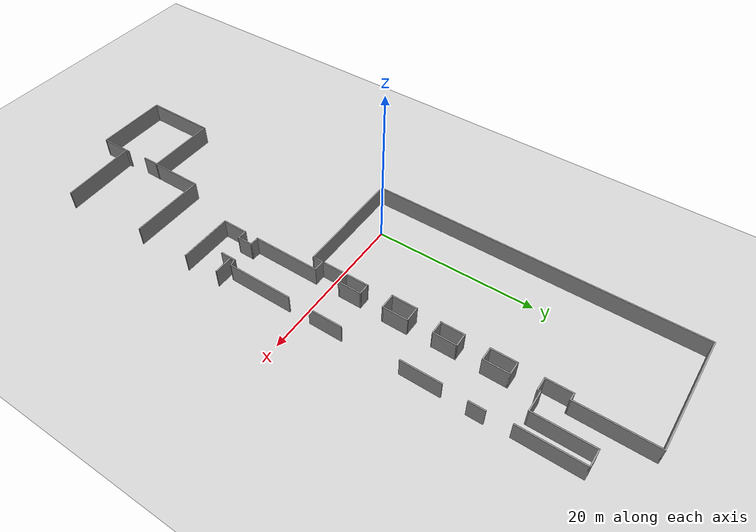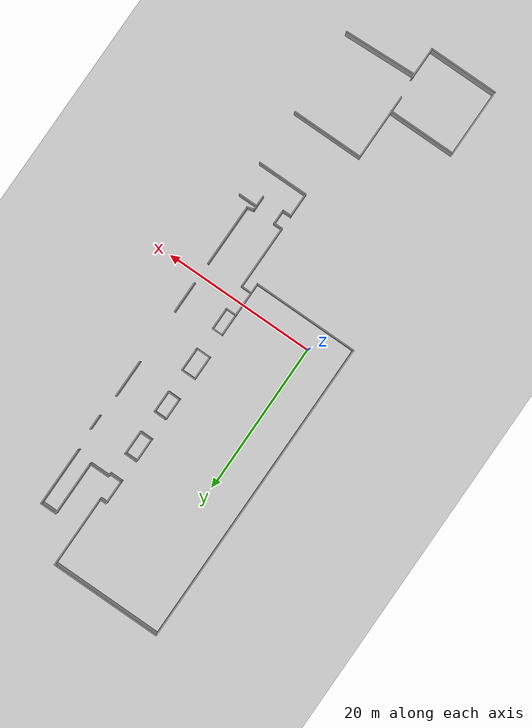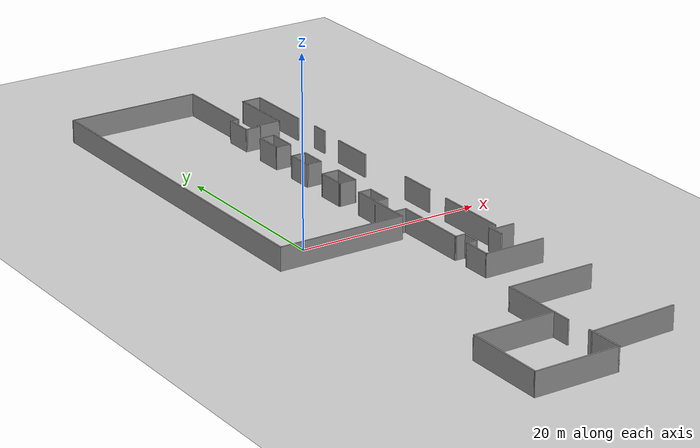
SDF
<sdf version="1.7">
 <world name="default">
  <model name="ground_plane">
   <static>1</static>
   <link name="link">
    <collision name="collision">
     <geometry><plane><normal>0 0 1</normal><size>100 100</size></plane></geometry>
     <surface>
      <contact><collide_bitmask>65535</collide_bitmask></contact>
      <friction><ode><mu>100</mu><mu2>50</mu2></ode></friction>
     </surface>
    </collision>
    <visual name="visual">
     <cast_shadows>0</cast_shadows>
     <geometry><plane><normal>0 0 1</normal><size>100 100</size></plane></geometry>
     <material>
      <script><uri>file://media/materials/scripts/gazebo.material</uri><name>Gazebo/Grey</name></script>
     </material>
    </visual>
   </link>
  </model>
  <model name="Lab">
   <pose>43.6591 0.026965 -0.000316 0 -1.4e-05 -1.57</pose>
   <link name="Wall_100">
    <collision name="Wall_100_Collision">
     <geometry><box><size>9.5 0.15 2.5</size></box></geometry>
     <pose>0 0 1.25 0 -0 0</pose>
    </collision>
    <visual name="Wall_100_Visual">
     <pose>0 0 1.25 0 -0 0</pose>
     <geometry><box><size>9.5 0.15 2.5</size></box></geometry>
     <material>
      <script><uri>file://media/materials/scripts/gazebo.material</uri><name>Gazebo/Grey</name></script>
      <ambient>1 1 1 1</ambient>
     </material>
     <meta><layer>0</layer></meta>
    </visual>
    <pose>22.3849 -30.9913 0 0 -0 -1.5708</pose>
    <inertial>
     <inertia><ixx>1</ixx><ixy>0</ixy><ixz>0</ixz><iyy>1</iyy><iyz>0</iyz><izz>1</izz></inertia>
     <mass>1</mass>
    </inertial>
   </link>
   <link name="Wall_101">
    <collision name="Wall_101_Collision">
     <geometry><box><size>8.75 0.15 2.5</size></box></geometry>
     <pose>0 0 1.25 0 -0 0</pose>
    </collision>
    <visual name="Wall_101_Visual">
     <pose>0 0 1.25 0 -0 0</pose>
     <geometry><box><size>8.75 0.15 2.5</size></box></geometry>
     <material>
      <script><uri>file://media/materials/scripts/gazebo.material</uri><name>Gazebo/Grey</name></script>
      <ambient>1 1 1 1</ambient>
     </material>
     <meta><layer>0</layer></meta>
    </visual>
    <pose>26.6849 -35.6663 0 0 -0 0</pose>
    <inertial>
     <inertia><ixx>1</ixx><ixy>0</ixy><ixz>0</ixz><iyy>1</iyy><iyz>0</iyz><izz>1</izz></inertia>
     <mass>1</mass>
    </inertial>
   </link>
   <link name="Wall_103">
    <collision name="Wall_103_Collision">
     <geometry><box><size>9 0.15 2.5</size></box></geometry>
     <pose>0 0 1.25 0 -0 0</pose>
    </collision>
    <visual name="Wall_103_Visual">
     <pose>0 0 1.25 0 -0 0</pose>
     <geometry><box><size>9 0.15 2.5</size></box></geometry>
     <material>
      <script><uri>file://media/materials/scripts/gazebo.material</uri><name>Gazebo/Grey</name></script>
      <ambient>1 1 1 1</ambient>
     </material>
     <meta><layer>0</layer></meta>
    </visual>
    <pose>28.9663 -40.0681 0 0 -0 -1.5708</pose>
    <inertial>
     <inertia><ixx>1</ixx><ixy>0</ixy><ixz>0</ixz><iyy>1</iyy><iyz>0</iyz><izz>1</izz></inertia>
     <mass>1</mass>
    </inertial>
   </link>
   <link name="Wall_104">
    <collision name="Wall_104_Collision">
     <geometry><box><size>9 0.15 2.5</size></box></geometry>
     <pose>0 0 1.25 0 -0 0</pose>
    </collision>
    <visual name="Wall_104_Visual">
     <pose>0 0 1.25 0 -0 0</pose>
     <geometry><box><size>9 0.15 2.5</size></box></geometry>
     <material>
      <script><uri>file://media/materials/scripts/gazebo.material</uri><name>Gazebo/Grey</name></script>
      <ambient>1 1 1 1</ambient>
     </material>
     <meta><layer>0</layer></meta>
    </visual>
    <pose>33.3913 -44.4931 0 0 -0 0</pose>
    <inertial>
     <inertia><ixx>1</ixx><ixy>0</ixy><ixz>0</ixz><iyy>1</iyy><iyz>0</iyz><izz>1</izz></inertia>
     <mass>1</mass>
    </inertial>
   </link>
   <link name="Wall_105">
    <collision name="Wall_105_Collision">
     <geometry><box><size>9.25 0.15 2.5</size></box></geometry>
     <pose>0 0 1.25 0 -0 0</pose>
    </collision>
    <visual name="Wall_105_Visual">
     <pose>0 0 1.25 0 -0 0</pose>
     <geometry><box><size>9.25 0.15 2.5</size></box></geometry>
     <material>
      <script><uri>file://media/materials/scripts/gazebo.material</uri><name>Gazebo/Grey</name></script>
      <ambient>1 1 1 1</ambient>
     </material>
     <meta><layer>0</layer></meta>
    </visual>
    <pose>37.8163 -39.9431 0 0 -0 1.5708</pose>
    <inertial>
     <inertia><ixx>1</ixx><ixy>0</ixy><ixz>0</ixz><iyy>1</iyy><iyz>0</iyz><izz>1</izz></inertia>
     <mass>1</mass>
    </inertial>
   </link>
   <link name="Wall_106">
    <collision name="Wall_106_Collision">
     <geometry><box><size>4.25 0.15 2.5</size></box></geometry>
     <pose>0 0 1.25 0 -0 0</pose>
    </collision>
    <visual name="Wall_106_Visual">
     <pose>0 0 1.25 0 -0 0</pose>
     <geometry><box><size>4.25 0.15 2.5</size></box></geometry>
     <material>
      <script><uri>file://media/materials/scripts/gazebo.material</uri><name>Gazebo/Grey</name></script>
      <ambient>1 1 1 1</ambient>
     </material>
     <meta><layer>0</layer></meta>
    </visual>
    <pose>35.7663 -35.3931 0 0 -0 3.14159</pose>
    <inertial>
     <inertia><ixx>1</ixx><ixy>0</ixy><ixz>0</ixz><iyy>1</iyy><iyz>0</iyz><izz>1</izz></inertia>
     <mass>1</mass>
    </inertial>
   </link>
   <link name="Wall_112">
    <collision name="Wall_112_Collision">
     <geometry><box><size>9.66481 0.15 2.5</size></box></geometry>
     <pose>0 0 1.25 0 -0 0</pose>
    </collision>
    <visual name="Wall_112_Visual">
     <pose>0 0 1.25 0 -0 0</pose>
     <geometry><box><size>9.66481 0.15 2.5</size></box></geometry>
     <material>
      <script><uri>file://media/materials/scripts/gazebo.material</uri><name>Gazebo/Grey</name></script>
      <ambient>1 1 1 1</ambient>
     </material>
     <meta><layer>0</layer></meta>
    </visual>
    <pose>33.9278 -30.6585 0 0 -0 1.61214</pose>
    <inertial>
     <inertia><ixx>1</ixx><ixy>0</ixy><ixz>0</ixz><iyy>1</iyy><iyz>0</iyz><izz>1</izz></inertia>
     <mass>1</mass>
    </inertial>
   </link>
   <link name="Wall_12">
    <collision name="Wall_12_Collision">
     <geometry><box><size>14.75 0.15 2.5</size></box></geometry>
     <pose>0 0 1.25 0 -0 0</pose>
    </collision>
    <visual name="Wall_12_Visual">
     <pose>0 0 1.25 0 -0 0</pose>
     <geometry><box><size>14.75 0.15 2.5</size></box></geometry>
     <material>
      <script><uri>file://media/materials/scripts/gazebo.material</uri><name>Gazebo/Grey</name></script>
      <ambient>1 1 1 1</ambient>
     </material>
     <meta><layer>0</layer></meta>
    </visual>
    <pose>-37.8163 -40.8414 0 0 -0 1.5708</pose>
    <inertial>
     <inertia><ixx>1</ixx><ixy>0</ixy><ixz>0</ixz><iyy>1</iyy><iyz>0</iyz><izz>1</izz></inertia>
     <mass>1</mass>
    </inertial>
   </link>
   <link name="Wall_14">
    <collision name="Wall_14_Collision">
     <geometry><box><size>9.5 0.15 2.5</size></box></geometry>
     <pose>0 0 1.25 0 -0 0</pose>
    </collision>
    <visual name="Wall_14_Visual">
     <pose>0 0 1.25 0 -0 0</pose>
     <geometry><box><size>9.5 0.15 2.5</size></box></geometry>
     <material>
      <script><uri>file://media/materials/scripts/gazebo.material</uri><name>Gazebo/Grey</name></script>
      <ambient>1 1 1 1</ambient>
     </material>
     <meta><layer>0</layer></meta>
    </visual>
    <pose>-33.1413 -33.5414 0 0 -0 0</pose>
    <inertial>
     <inertia><ixx>1</ixx><ixy>0</ixy><ixz>0</ixz><iyy>1</iyy><iyz>0</iyz><izz>1</izz></inertia>
     <mass>1</mass>
    </inertial>
   </link>
   <link name="Wall_15">
    <collision name="Wall_15_Collision">
     <geometry><box><size>1 0.15 2.5</size></box></geometry>
     <pose>0 0 1.25 0 -0 0</pose>
    </collision>
    <visual name="Wall_15_Visual">
     <pose>0 0 1.25 0 -0 0</pose>
     <geometry><box><size>1 0.15 2.5</size></box></geometry>
     <material>
      <script><uri>file://media/materials/scripts/gazebo.material</uri><name>Gazebo/Grey</name></script>
      <ambient>1 1 1 1</ambient>
     </material>
     <meta><layer>0</layer></meta>
    </visual>
    <pose>-28.4663 -33.9664 0 0 -0 -1.5708</pose>
    <inertial>
     <inertia><ixx>1</ixx><ixy>0</ixy><ixz>0</ixz><iyy>1</iyy><iyz>0</iyz><izz>1</izz></inertia>
     <mass>1</mass>
    </inertial>
   </link>
   <link name="Wall_16">
    <collision name="Wall_16_Collision">
     <geometry><box><size>3.25 0.15 2.5</size></box></geometry>
     <pose>0 0 1.25 0 -0 0</pose>
    </collision>
    <visual name="Wall_16_Visual">
     <pose>0 0 1.25 0 -0 0</pose>
     <geometry><box><size>3.25 0.15 2.5</size></box></geometry>
     <material>
      <script><uri>file://media/materials/scripts/gazebo.material</uri><name>Gazebo/Grey</name></script>
      <ambient>1 1 1 1</ambient>
     </material>
     <meta><layer>0</layer></meta>
    </visual>
    <pose>-26.9163 -34.3914 0 0 -0 0</pose>
    <inertial>
     <inertia><ixx>1</ixx><ixy>0</ixy><ixz>0</ixz><iyy>1</iyy><iyz>0</iyz><izz>1</izz></inertia>
     <mass>1</mass>
    </inertial>
   </link>
   <link name="Wall_17">
    <collision name="Wall_17_Collision">
     <geometry><box><size>1.75 0.15 2.5</size></box></geometry>
     <pose>0 0 1.25 0 -0 0</pose>
    </collision>
    <visual name="Wall_17_Visual">
     <pose>0 0 1.25 0 -0 0</pose>
     <geometry><box><size>1.75 0.15 2.5</size></box></geometry>
     <material>
      <script><uri>file://media/materials/scripts/gazebo.material</uri><name>Gazebo/Grey</name></script>
      <ambient>1 1 1 1</ambient>
     </material>
     <meta><layer>0</layer></meta>
    </visual>
    <pose>-25.3663 -33.5914 0 0 -0 1.5708</pose>
    <inertial>
     <inertia><ixx>1</ixx><ixy>0</ixy><ixz>0</ixz><iyy>1</iyy><iyz>0</iyz><izz>1</izz></inertia>
     <mass>1</mass>
    </inertial>
   </link>
   <link name="Wall_20">
    <collision name="Wall_20_Collision">
     <geometry><box><size>0.5 0.15 2.5</size></box></geometry>
     <pose>0 0 1.25 0 -0 0</pose>
    </collision>
    <visual name="Wall_20_Visual">
     <pose>0 0 1.25 0 -0 0</pose>
     <geometry><box><size>0.5 0.15 2.5</size></box></geometry>
     <material>
      <script><uri>file://media/materials/scripts/gazebo.material</uri><name>Gazebo/Grey</name></script>
      <ambient>1 1 1 1</ambient>
     </material>
     <meta><layer>0</layer></meta>
    </visual>
    <pose>-25.5413 -32.7914 0 0 -0 3.14159</pose>
    <inertial>
     <inertia><ixx>1</ixx><ixy>0</ixy><ixz>0</ixz><iyy>1</iyy><iyz>0</iyz><izz>1</izz></inertia>
     <mass>1</mass>
    </inertial>
   </link>
   <link name="Wall_21">
    <collision name="Wall_21_Collision">
     <geometry><box><size>2.75 0.15 2.5</size></box></geometry>
     <pose>0 0 1.25 0 -0 0</pose>
    </collision>
    <visual name="Wall_21_Visual">
     <pose>0 0 1.25 0 -0 0</pose>
     <geometry><box><size>2.75 0.15 2.5</size></box></geometry>
     <material>
      <script><uri>file://media/materials/scripts/gazebo.material</uri><name>Gazebo/Grey</name></script>
      <ambient>1 1 1 1</ambient>
     </material>
     <meta><layer>0</layer></meta>
    </visual>
    <pose>-25.7163 -31.4914 0 0 -0 1.5708</pose>
    <inertial>
     <inertia><ixx>1</ixx><ixy>0</ixy><ixz>0</ixz><iyy>1</iyy><iyz>0</iyz><izz>1</izz></inertia>
     <mass>1</mass>
    </inertial>
   </link>
   <link name="Wall_23">
    <collision name="Wall_23_Collision">
     <geometry><box><size>7.25 0.15 2.5</size></box></geometry>
     <pose>0 0 1.25 0 -0 0</pose>
    </collision>
    <visual name="Wall_23_Visual">
     <pose>0 0 1.25 0 -0 0</pose>
     <geometry><box><size>7.25 0.15 2.5</size></box></geometry>
     <material>
      <script><uri>file://media/materials/scripts/gazebo.material</uri><name>Gazebo/Grey</name></script>
      <ambient>1 1 1 1</ambient>
     </material>
     <meta><layer>0</layer></meta>
    </visual>
    <pose>-29.2663 -30.1914 0 0 -0 3.14159</pose>
    <inertial>
     <inertia><ixx>1</ixx><ixy>0</ixy><ixz>0</ixz><iyy>1</iyy><iyz>0</iyz><izz>1</izz></inertia>
     <mass>1</mass>
    </inertial>
   </link>
   <link name="Wall_24">
    <collision name="Wall_24_Collision">
     <geometry><box><size>2.25 0.15 2.5</size></box></geometry>
     <pose>0 0 1.25 0 -0 0</pose>
    </collision>
    <visual name="Wall_24_Visual">
     <pose>0 0 1.25 0 -0 0</pose>
     <geometry><box><size>2.25 0.15 2.5</size></box></geometry>
     <material>
      <script><uri>file://media/materials/scripts/gazebo.material</uri><name>Gazebo/Grey</name></script>
      <ambient>1 1 1 1</ambient>
     </material>
     <meta><layer>0</layer></meta>
    </visual>
    <pose>-32.8163 -29.1414 0 0 -0 1.5708</pose>
    <inertial>
     <inertia><ixx>1</ixx><ixy>0</ixy><ixz>0</ixz><iyy>1</iyy><iyz>0</iyz><izz>1</izz></inertia>
     <mass>1</mass>
    </inertial>
   </link>
   <link name="Wall_25">
    <collision name="Wall_25_Collision">
     <geometry><box><size>7.75 0.15 2.5</size></box></geometry>
     <pose>0 0 1.25 0 -0 0</pose>
    </collision>
    <visual name="Wall_25_Visual">
     <pose>0 0 1.25 0 -0 0</pose>
     <geometry><box><size>7.75 0.15 2.5</size></box></geometry>
     <material>
      <script><uri>file://media/materials/scripts/gazebo.material</uri><name>Gazebo/Grey</name></script>
      <ambient>1 1 1 1</ambient>
     </material>
     <meta><layer>0</layer></meta>
    </visual>
    <pose>-29.0163 -28.0914 0 0 -0 0</pose>
    <inertial>
     <inertia><ixx>1</ixx><ixy>0</ixy><ixz>0</ixz><iyy>1</iyy><iyz>0</iyz><izz>1</izz></inertia>
     <mass>1</mass>
    </inertial>
   </link>
   <link name="Wall_35">
    <collision name="Wall_35_Collision">
     <geometry><box><size>2 0.15 2.5</size></box></geometry>
     <pose>0 0 1.25 0 -0 0</pose>
    </collision>
    <visual name="Wall_35_Visual">
     <pose>0 0 1.25 0 -0 0</pose>
     <geometry><box><size>2 0.15 2.5</size></box></geometry>
     <material>
      <script><uri>file://media/materials/scripts/gazebo.material</uri><name>Gazebo/Grey</name></script>
      <ambient>1 1 1 1</ambient>
     </material>
     <meta><layer>0</layer></meta>
    </visual>
    <pose>-21.3913 -27.8414 0 0 -0 0</pose>
    <inertial>
     <inertia><ixx>1</ixx><ixy>0</ixy><ixz>0</ixz><iyy>1</iyy><iyz>0</iyz><izz>1</izz></inertia>
     <mass>1</mass>
    </inertial>
   </link>
   <link name="Wall_40">
    <collision name="Wall_40_Collision">
     <geometry><box><size>5 0.15 2.5</size></box></geometry>
     <pose>0 0 1.25 0 -0 0</pose>
    </collision>
    <visual name="Wall_40_Visual">
     <pose>0 0 1.25 0 -0 0</pose>
     <geometry><box><size>5 0.15 2.5</size></box></geometry>
     <material>
      <script><uri>file://media/materials/scripts/gazebo.material</uri><name>Gazebo/Grey</name></script>
      <ambient>1 1 1 1</ambient>
     </material>
     <meta><layer>0</layer></meta>
    </visual>
    <pose>-14.9413 -28.0914 0 0 -0 0</pose>
    <inertial>
     <inertia><ixx>1</ixx><ixy>0</ixy><ixz>0</ixz><iyy>1</iyy><iyz>0</iyz><izz>1</izz></inertia>
     <mass>1</mass>
    </inertial>
   </link>
   <link name="Wall_43">
    <collision name="Wall_43_Collision">
     <geometry><box><size>3.25 0.15 2.5</size></box></geometry>
     <pose>0 0 1.25 0 -0 0</pose>
    </collision>
    <visual name="Wall_43_Visual">
     <pose>0 0 1.25 0 -0 0</pose>
     <geometry><box><size>3.25 0.15 2.5</size></box></geometry>
     <material>
      <script><uri>file://media/materials/scripts/gazebo.material</uri><name>Gazebo/Grey</name></script>
      <ambient>1 1 1 1</ambient>
     </material>
     <meta><layer>0</layer></meta>
    </visual>
    <pose>-20.8161 -32.8981 0 0 -0 0</pose>
    <inertial>
     <inertia><ixx>1</ixx><ixy>0</ixy><ixz>0</ixz><iyy>1</iyy><iyz>0</iyz><izz>1</izz></inertia>
     <mass>1</mass>
    </inertial>
   </link>
   <link name="Wall_44">
    <collision name="Wall_44_Collision">
     <geometry><box><size>1.75 0.15 2.5</size></box></geometry>
     <pose>0 0 1.25 0 -0 0</pose>
    </collision>
    <visual name="Wall_44_Visual">
     <pose>0 0 1.25 0 -0 0</pose>
     <geometry><box><size>1.75 0.15 2.5</size></box></geometry>
     <material>
      <script><uri>file://media/materials/scripts/gazebo.material</uri><name>Gazebo/Grey</name></script>
      <ambient>1 1 1 1</ambient>
     </material>
     <meta><layer>0</layer></meta>
    </visual>
    <pose>-19.2661 -33.6981 0 0 -0 -1.5708</pose>
    <inertial>
     <inertia><ixx>1</ixx><ixy>0</ixy><ixz>0</ixz><iyy>1</iyy><iyz>0</iyz><izz>1</izz></inertia>
     <mass>1</mass>
    </inertial>
   </link>
   <link name="Wall_45">
    <collision name="Wall_45_Collision">
     <geometry><box><size>3.25 0.15 2.5</size></box></geometry>
     <pose>0 0 1.25 0 -0 0</pose>
    </collision>
    <visual name="Wall_45_Visual">
     <pose>0 0 1.25 0 -0 0</pose>
     <geometry><box><size>3.25 0.15 2.5</size></box></geometry>
     <material>
      <script><uri>file://media/materials/scripts/gazebo.material</uri><name>Gazebo/Grey</name></script>
      <ambient>1 1 1 1</ambient>
     </material>
     <meta><layer>0</layer></meta>
    </visual>
    <pose>-20.8161 -34.4981 0 0 -0 3.14159</pose>
    <inertial>
     <inertia><ixx>1</ixx><ixy>0</ixy><ixz>0</ixz><iyy>1</iyy><iyz>0</iyz><izz>1</izz></inertia>
     <mass>1</mass>
    </inertial>
   </link>
   <link name="Wall_46">
    <collision name="Wall_46_Collision">
     <geometry><box><size>1.75 0.15 2.5</size></box></geometry>
     <pose>0 0 1.25 0 -0 0</pose>
    </collision>
    <visual name="Wall_46_Visual">
     <pose>0 0 1.25 0 -0 0</pose>
     <geometry><box><size>1.75 0.15 2.5</size></box></geometry>
     <material>
      <script><uri>file://media/materials/scripts/gazebo.material</uri><name>Gazebo/Grey</name></script>
      <ambient>1 1 1 1</ambient>
     </material>
     <meta><layer>0</layer></meta>
    </visual>
    <pose>-22.3661 -33.6981 0 0 -0 1.5708</pose>
    <inertial>
     <inertia><ixx>1</ixx><ixy>0</ixy><ixz>0</ixz><iyy>1</iyy><iyz>0</iyz><izz>1</izz></inertia>
     <mass>1</mass>
    </inertial>
   </link>
   <link name="Wall_48">
    <collision name="Wall_48_Collision">
     <geometry><box><size>3 0.15 2.5</size></box></geometry>
     <pose>0 0 1.25 0 -0 0</pose>
    </collision>
    <visual name="Wall_48_Visual">
     <pose>0 0 1.25 0 -0 0</pose>
     <geometry><box><size>3 0.15 2.5</size></box></geometry>
     <material>
      <script><uri>file://media/materials/scripts/gazebo.material</uri><name>Gazebo/Grey</name></script>
      <ambient>1 1 1 1</ambient>
     </material>
     <meta><layer>0</layer></meta>
    </visual>
    <pose>-14.882 -32.9016 0 0 -0 0</pose>
    <inertial>
     <inertia><ixx>1</ixx><ixy>0</ixy><ixz>0</ixz><iyy>1</iyy><iyz>0</iyz><izz>1</izz></inertia>
     <mass>1</mass>
    </inertial>
   </link>
   <link name="Wall_49">
    <collision name="Wall_49_Collision">
     <geometry><box><size>1.75 0.15 2.5</size></box></geometry>
     <pose>0 0 1.25 0 -0 0</pose>
    </collision>
    <visual name="Wall_49_Visual">
     <pose>0 0 1.25 0 -0 0</pose>
     <geometry><box><size>1.75 0.15 2.5</size></box></geometry>
     <material>
      <script><uri>file://media/materials/scripts/gazebo.material</uri><name>Gazebo/Grey</name></script>
      <ambient>1 1 1 1</ambient>
     </material>
     <meta><layer>0</layer></meta>
    </visual>
    <pose>-13.457 -33.7016 0 0 -0 -1.5708</pose>
    <inertial>
     <inertia><ixx>1</ixx><ixy>0</ixy><ixz>0</ixz><iyy>1</iyy><iyz>0</iyz><izz>1</izz></inertia>
     <mass>1</mass>
    </inertial>
   </link>
   <link name="Wall_50">
    <collision name="Wall_50_Collision">
     <geometry><box><size>3 0.15 2.5</size></box></geometry>
     <pose>0 0 1.25 0 -0 0</pose>
    </collision>
    <visual name="Wall_50_Visual">
     <pose>0 0 1.25 0 -0 0</pose>
     <geometry><box><size>3 0.15 2.5</size></box></geometry>
     <material>
      <script><uri>file://media/materials/scripts/gazebo.material</uri><name>Gazebo/Grey</name></script>
      <ambient>1 1 1 1</ambient>
     </material>
     <meta><layer>0</layer></meta>
    </visual>
    <pose>-14.882 -34.5016 0 0 -0 3.14159</pose>
    <inertial>
     <inertia><ixx>1</ixx><ixy>0</ixy><ixz>0</ixz><iyy>1</iyy><iyz>0</iyz><izz>1</izz></inertia>
     <mass>1</mass>
    </inertial>
   </link>
   <link name="Wall_51">
    <collision name="Wall_51_Collision">
     <geometry><box><size>1.75 0.15 2.5</size></box></geometry>
     <pose>0 0 1.25 0 -0 0</pose>
    </collision>
    <visual name="Wall_51_Visual">
     <pose>0 0 1.25 0 -0 0</pose>
     <geometry><box><size>1.75 0.15 2.5</size></box></geometry>
     <material>
      <script><uri>file://media/materials/scripts/gazebo.material</uri><name>Gazebo/Grey</name></script>
      <ambient>1 1 1 1</ambient>
     </material>
     <meta><layer>0</layer></meta>
    </visual>
    <pose>-16.307 -33.7016 0 0 -0 1.5708</pose>
    <inertial>
     <inertia><ixx>1</ixx><ixy>0</ixy><ixz>0</ixz><iyy>1</iyy><iyz>0</iyz><izz>1</izz></inertia>
     <mass>1</mass>
    </inertial>
   </link>
   <link name="Wall_53">
    <collision name="Wall_53_Collision">
     <geometry><box><size>2 0.15 2.5</size></box></geometry>
     <pose>0 0 1.25 0 -0 0</pose>
    </collision>
    <visual name="Wall_53_Visual">
     <pose>0 0 1.25 0 -0 0</pose>
     <geometry><box><size>2 0.15 2.5</size></box></geometry>
     <material>
      <script><uri>file://media/materials/scripts/gazebo.material</uri><name>Gazebo/Grey</name></script>
      <ambient>1 1 1 1</ambient>
     </material>
     <meta><layer>0</layer></meta>
    </visual>
    <pose>-10.4318 -33.6879 0 0 -0 -1.5708</pose>
    <inertial>
     <inertia><ixx>1</ixx><ixy>0</ixy><ixz>0</ixz><iyy>1</iyy><iyz>0</iyz><izz>1</izz></inertia>
     <mass>1</mass>
    </inertial>
   </link>
   <link name="Wall_54">
    <collision name="Wall_54_Collision">
     <geometry><box><size>3.25 0.15 2.5</size></box></geometry>
     <pose>0 0 1.25 0 -0 0</pose>
    </collision>
    <visual name="Wall_54_Visual">
     <pose>0 0 1.25 0 -0 0</pose>
     <geometry><box><size>3.25 0.15 2.5</size></box></geometry>
     <material>
      <script><uri>file://media/materials/scripts/gazebo.material</uri><name>Gazebo/Grey</name></script>
      <ambient>1 1 1 1</ambient>
     </material>
     <meta><layer>0</layer></meta>
    </visual>
    <pose>-8.8818 -34.6129 0 0 -0 0</pose>
    <inertial>
     <inertia><ixx>1</ixx><ixy>0</ixy><ixz>0</ixz><iyy>1</iyy><iyz>0</iyz><izz>1</izz></inertia>
     <mass>1</mass>
    </inertial>
   </link>
   <link name="Wall_55">
    <collision name="Wall_55_Collision">
     <geometry><box><size>2 0.15 2.5</size></box></geometry>
     <pose>0 0 1.25 0 -0 0</pose>
    </collision>
    <visual name="Wall_55_Visual">
     <pose>0 0 1.25 0 -0 0</pose>
     <geometry><box><size>2 0.15 2.5</size></box></geometry>
     <material>
      <script><uri>file://media/materials/scripts/gazebo.material</uri><name>Gazebo/Grey</name></script>
      <ambient>1 1 1 1</ambient>
     </material>
     <meta><layer>0</layer></meta>
    </visual>
    <pose>-7.3318 -33.6879 0 0 -0 1.5708</pose>
    <inertial>
     <inertia><ixx>1</ixx><ixy>0</ixy><ixz>0</ixz><iyy>1</iyy><iyz>0</iyz><izz>1</izz></inertia>
     <mass>1</mass>
    </inertial>
   </link>
   <link name="Wall_56">
    <collision name="Wall_56_Collision">
     <geometry><box><size>3.25 0.15 2.5</size></box></geometry>
     <pose>0 0 1.25 0 -0 0</pose>
    </collision>
    <visual name="Wall_56_Visual">
     <pose>0 0 1.25 0 -0 0</pose>
     <geometry><box><size>3.25 0.15 2.5</size></box></geometry>
     <material>
      <script><uri>file://media/materials/scripts/gazebo.material</uri><name>Gazebo/Grey</name></script>
      <ambient>1 1 1 1</ambient>
     </material>
     <meta><layer>0</layer></meta>
    </visual>
    <pose>-8.8818 -32.7629 0 0 -0 3.14159</pose>
    <inertial>
     <inertia><ixx>1</ixx><ixy>0</ixy><ixz>0</ixz><iyy>1</iyy><iyz>0</iyz><izz>1</izz></inertia>
     <mass>1</mass>
    </inertial>
   </link>
   <link name="Wall_58">
    <collision name="Wall_58_Collision">
     <geometry><box><size>7.5 0.15 2.5</size></box></geometry>
     <pose>0 0 1.25 0 -0 0</pose>
    </collision>
    <visual name="Wall_58_Visual">
     <pose>0 0 1.25 0 -0 0</pose>
     <geometry><box><size>7.5 0.15 2.5</size></box></geometry>
     <material>
      <script><uri>file://media/materials/scripts/gazebo.material</uri><name>Gazebo/Grey</name></script>
      <ambient>1 1 1 1</ambient>
     </material>
     <meta><layer>0</layer></meta>
    </visual>
    <pose>-0.641263 -34.2914 0 0 -0 3.14159</pose>
    <inertial>
     <inertia><ixx>1</ixx><ixy>0</ixy><ixz>0</ixz><iyy>1</iyy><iyz>0</iyz><izz>1</izz></inertia>
     <mass>1</mass>
    </inertial>
   </link>
   <link name="Wall_59">
    <collision name="Wall_59_Collision">
     <geometry><box><size>1.5 0.15 2.5</size></box></geometry>
     <pose>0 0 1.25 0 -0 0</pose>
    </collision>
    <visual name="Wall_59_Visual">
     <pose>0 0 1.25 0 -0 0</pose>
     <geometry><box><size>1.5 0.15 2.5</size></box></geometry>
     <material>
      <script><uri>file://media/materials/scripts/gazebo.material</uri><name>Gazebo/Grey</name></script>
      <ambient>1 1 1 1</ambient>
     </material>
     <meta><layer>0</layer></meta>
    </visual>
    <pose>-4.31626 -33.6164 0 0 -0 1.5708</pose>
    <inertial>
     <inertia><ixx>1</ixx><ixy>0</ixy><ixz>0</ixz><iyy>1</iyy><iyz>0</iyz><izz>1</izz></inertia>
     <mass>1</mass>
    </inertial>
   </link>
   <link name="Wall_60">
    <collision name="Wall_60_Collision">
     <geometry><box><size>3 0.15 2.5</size></box></geometry>
     <pose>0 0 1.25 0 -0 0</pose>
    </collision>
    <visual name="Wall_60_Visual">
     <pose>0 0 1.25 0 -0 0</pose>
     <geometry><box><size>3 0.15 2.5</size></box></geometry>
     <material>
      <script><uri>file://media/materials/scripts/gazebo.material</uri><name>Gazebo/Grey</name></script>
      <ambient>1 1 1 1</ambient>
     </material>
     <meta><layer>0</layer></meta>
    </visual>
    <pose>-2.89126 -32.9414 0 0 -0 0</pose>
    <inertial>
     <inertia><ixx>1</ixx><ixy>0</ixy><ixz>0</ixz><iyy>1</iyy><iyz>0</iyz><izz>1</izz></inertia>
     <mass>1</mass>
    </inertial>
   </link>
   <link name="Wall_61">
    <collision name="Wall_61_Collision">
     <geometry><box><size>1.5 0.15 2.5</size></box></geometry>
     <pose>0 0 1.25 0 -0 0</pose>
    </collision>
    <visual name="Wall_61_Visual">
     <pose>0 0 1.25 0 -0 0</pose>
     <geometry><box><size>1.5 0.15 2.5</size></box></geometry>
     <material>
      <script><uri>file://media/materials/scripts/gazebo.material</uri><name>Gazebo/Grey</name></script>
      <ambient>1 1 1 1</ambient>
     </material>
     <meta><layer>0</layer></meta>
    </visual>
    <pose>-1.46626 -33.6164 0 0 -0 -1.5708</pose>
    <inertial>
     <inertia><ixx>1</ixx><ixy>0</ixy><ixz>0</ixz><iyy>1</iyy><iyz>0</iyz><izz>1</izz></inertia>
     <mass>1</mass>
    </inertial>
   </link>
   <link name="Wall_63">
    <collision name="Wall_63_Collision">
     <geometry><box><size>1.5 0.15 2.5</size></box></geometry>
     <pose>0 0 1.25 0 -0 0</pose>
    </collision>
    <visual name="Wall_63_Visual">
     <pose>0 0 1.25 0 -0 0</pose>
     <geometry><box><size>1.5 0.15 2.5</size></box></geometry>
     <material>
      <script><uri>file://media/materials/scripts/gazebo.material</uri><name>Gazebo/Grey</name></script>
      <ambient>1 1 1 1</ambient>
     </material>
     <meta><layer>0</layer></meta>
    </visual>
    <pose>1.7349 -33.5913 0 0 -0 1.5708</pose>
    <inertial>
     <inertia><ixx>1</ixx><ixy>0</ixy><ixz>0</ixz><iyy>1</iyy><iyz>0</iyz><izz>1</izz></inertia>
     <mass>1</mass>
    </inertial>
   </link>
   <link name="Wall_69">
    <collision name="Wall_69_Collision">
     <geometry><box><size>4.25 0.15 2.5</size></box></geometry>
     <pose>0 0 1.25 0 -0 0</pose>
    </collision>
    <visual name="Wall_69_Visual">
     <pose>0 0 1.25 0 -0 0</pose>
     <geometry><box><size>4.25 0.15 2.5</size></box></geometry>
     <material>
      <script><uri>file://media/materials/scripts/gazebo.material</uri><name>Gazebo/Grey</name></script>
      <ambient>1 1 1 1</ambient>
     </material>
     <meta><layer>0</layer></meta>
    </visual>
    <pose>-3.16626 -28.0914 0 0 -0 0</pose>
    <inertial>
     <inertia><ixx>1</ixx><ixy>0</ixy><ixz>0</ixz><iyy>1</iyy><iyz>0</iyz><izz>1</izz></inertia>
     <mass>1</mass>
    </inertial>
   </link>
   <link name="Wall_7">
    <collision name="Wall_7_Collision">
     <geometry><box><size>14 0.15 2.5</size></box></geometry>
     <pose>0 0 1.25 0 -0 0</pose>
    </collision>
    <visual name="Wall_7_Visual">
     <pose>0 0 1.25 0 -0 0</pose>
     <geometry><box><size>14 0.15 2.5</size></box></geometry>
     <material>
      <script><uri>file://media/materials/scripts/gazebo.material</uri><name>Gazebo/Grey</name></script>
      <ambient>1 1 1 1</ambient>
     </material>
     <meta><layer>0</layer></meta>
    </visual>
    <pose>3.03374 -41.2164 0 0 -0 -1.5708</pose>
    <inertial>
     <inertia><ixx>1</ixx><ixy>0</ixy><ixz>0</ixz><iyy>1</iyy><iyz>0</iyz><izz>1</izz></inertia>
     <mass>1</mass>
    </inertial>
   </link>
   <link name="Wall_73">
    <collision name="Wall_73_Collision">
     <geometry><box><size>8.25 0.15 2.5</size></box></geometry>
     <pose>0 0 1.25 0 -0 0</pose>
    </collision>
    <visual name="Wall_73_Visual">
     <pose>0 0 1.25 0 -0 0</pose>
     <geometry><box><size>8.25 0.15 2.5</size></box></geometry>
     <material>
      <script><uri>file://media/materials/scripts/gazebo.material</uri><name>Gazebo/Grey</name></script>
      <ambient>1 1 1 1</ambient>
     </material>
     <meta><layer>0</layer></meta>
    </visual>
    <pose>5.78374 -28.0914 0 0 -0 0</pose>
    <inertial>
     <inertia><ixx>1</ixx><ixy>0</ixy><ixz>0</ixz><iyy>1</iyy><iyz>0</iyz><izz>1</izz></inertia>
     <mass>1</mass>
    </inertial>
   </link>
   <link name="Wall_75">
    <collision name="Wall_75_Collision">
     <geometry><box><size>8.5 0.15 2.5</size></box></geometry>
     <pose>0 0 1.25 0 -0 0</pose>
    </collision>
    <visual name="Wall_75_Visual">
     <pose>0 0 1.25 0 -0 0</pose>
     <geometry><box><size>8.5 0.15 2.5</size></box></geometry>
     <material>
      <script><uri>file://media/materials/scripts/gazebo.material</uri><name>Gazebo/Grey</name></script>
      <ambient>1 1 1 1</ambient>
     </material>
     <meta><layer>0</layer></meta>
    </visual>
    <pose>5.9099 -32.9163 0 0 -0 0</pose>
    <inertial>
     <inertia><ixx>1</ixx><ixy>0</ixy><ixz>0</ixz><iyy>1</iyy><iyz>0</iyz><izz>1</izz></inertia>
     <mass>1</mass>
    </inertial>
   </link>
   <link name="Wall_76">
    <collision name="Wall_76_Collision">
     <geometry><box><size>1.25 0.15 2.5</size></box></geometry>
     <pose>0 0 1.25 0 -0 0</pose>
    </collision>
    <visual name="Wall_76_Visual">
     <pose>0 0 1.25 0 -0 0</pose>
     <geometry><box><size>1.25 0.15 2.5</size></box></geometry>
     <material>
      <script><uri>file://media/materials/scripts/gazebo.material</uri><name>Gazebo/Grey</name></script>
      <ambient>1 1 1 1</ambient>
     </material>
     <meta><layer>0</layer></meta>
    </visual>
    <pose>10.0849 -32.3663 0 0 -0 1.5708</pose>
    <inertial>
     <inertia><ixx>1</ixx><ixy>0</ixy><ixz>0</ixz><iyy>1</iyy><iyz>0</iyz><izz>1</izz></inertia>
     <mass>1</mass>
    </inertial>
   </link>
   <link name="Wall_77">
    <collision name="Wall_77_Collision">
     <geometry><box><size>2 0.15 2.5</size></box></geometry>
     <pose>0 0 1.25 0 -0 0</pose>
    </collision>
    <visual name="Wall_77_Visual">
     <pose>0 0 1.25 0 -0 0</pose>
     <geometry><box><size>2 0.15 2.5</size></box></geometry>
     <material>
      <script><uri>file://media/materials/scripts/gazebo.material</uri><name>Gazebo/Grey</name></script>
      <ambient>1 1 1 1</ambient>
     </material>
     <meta><layer>0</layer></meta>
    </visual>
    <pose>11.0099 -31.8163 0 0 -0 0</pose>
    <inertial>
     <inertia><ixx>1</ixx><ixy>0</ixy><ixz>0</ixz><iyy>1</iyy><iyz>0</iyz><izz>1</izz></inertia>
     <mass>1</mass>
    </inertial>
   </link>
   <link name="Wall_78">
    <collision name="Wall_78_Collision">
     <geometry><box><size>1.25 0.15 2.5</size></box></geometry>
     <pose>0 0 1.25 0 -0 0</pose>
    </collision>
    <visual name="Wall_78_Visual">
     <pose>0 0 1.25 0 -0 0</pose>
     <geometry><box><size>1.25 0.15 2.5</size></box></geometry>
     <material>
      <script><uri>file://media/materials/scripts/gazebo.material</uri><name>Gazebo/Grey</name></script>
      <ambient>1 1 1 1</ambient>
     </material>
     <meta><layer>0</layer></meta>
    </visual>
    <pose>11.9349 -32.3663 0 0 -0 -1.5708</pose>
    <inertial>
     <inertia><ixx>1</ixx><ixy>0</ixy><ixz>0</ixz><iyy>1</iyy><iyz>0</iyz><izz>1</izz></inertia>
     <mass>1</mass>
    </inertial>
   </link>
   <link name="Wall_79">
    <collision name="Wall_79_Collision">
     <geometry><box><size>3.25 0.15 2.5</size></box></geometry>
     <pose>0 0 1.25 0 -0 0</pose>
    </collision>
    <visual name="Wall_79_Visual">
     <pose>0 0 1.25 0 -0 0</pose>
     <geometry><box><size>3.25 0.15 2.5</size></box></geometry>
     <material>
      <script><uri>file://media/materials/scripts/gazebo.material</uri><name>Gazebo/Grey</name></script>
      <ambient>1 1 1 1</ambient>
     </material>
     <meta><layer>0</layer></meta>
    </visual>
    <pose>13.4849 -32.9163 0 0 -0 0</pose>
    <inertial>
     <inertia><ixx>1</ixx><ixy>0</ixy><ixz>0</ixz><iyy>1</iyy><iyz>0</iyz><izz>1</izz></inertia>
     <mass>1</mass>
    </inertial>
   </link>
   <link name="Wall_80">
    <collision name="Wall_80_Collision">
     <geometry><box><size>6.75 0.15 2.5</size></box></geometry>
     <pose>0 0 1.25 0 -0 0</pose>
    </collision>
    <visual name="Wall_80_Visual">
     <pose>0 0 1.25 0 -0 0</pose>
     <geometry><box><size>6.75 0.15 2.5</size></box></geometry>
     <material>
      <script><uri>file://media/materials/scripts/gazebo.material</uri><name>Gazebo/Grey</name></script>
      <ambient>1 1 1 1</ambient>
     </material>
     <meta><layer>0</layer></meta>
    </visual>
    <pose>15.0349 -29.6163 0 0 -0 1.5708</pose>
    <inertial>
     <inertia><ixx>1</ixx><ixy>0</ixy><ixz>0</ixz><iyy>1</iyy><iyz>0</iyz><izz>1</izz></inertia>
     <mass>1</mass>
    </inertial>
   </link>
   <link name="Wall_82">
    <collision name="Wall_82_Collision">
     <geometry><box><size>1 0.15 2.5</size></box></geometry>
     <pose>0 0 1.25 0 -0 0</pose>
    </collision>
    <visual name="Wall_82_Visual">
     <pose>0 0 1.25 0 -0 0</pose>
     <geometry><box><size>1 0.15 2.5</size></box></geometry>
     <material>
      <script><uri>file://media/materials/scripts/gazebo.material</uri><name>Gazebo/Grey</name></script>
      <ambient>1 1 1 1</ambient>
     </material>
     <meta><layer>0</layer></meta>
    </visual>
    <pose>9.94374 -28.502 0 0 -0 -1.309</pose>
    <inertial>
     <inertia><ixx>1</ixx><ixy>0</ixy><ixz>0</ixz><iyy>1</iyy><iyz>0</iyz><izz>1</izz></inertia>
     <mass>1</mass>
    </inertial>
   </link>
   <link name="Wall_83">
    <collision name="Wall_83_Collision">
     <geometry><box><size>2 0.15 2.5</size></box></geometry>
     <pose>0 0 1.25 0 -0 0</pose>
    </collision>
    <visual name="Wall_83_Visual">
     <pose>0 0 1.25 0 -0 0</pose>
     <geometry><box><size>2 0.15 2.5</size></box></geometry>
     <material>
      <script><uri>file://media/materials/scripts/gazebo.material</uri><name>Gazebo/Grey</name></script>
      <ambient>1 1 1 1</ambient>
     </material>
     <meta><layer>0</layer></meta>
    </visual>
    <pose>10.9787 -28.9125 0 0 -0 0</pose>
    <inertial>
     <inertia><ixx>1</ixx><ixy>0</ixy><ixz>0</ixz><iyy>1</iyy><iyz>0</iyz><izz>1</izz></inertia>
     <mass>1</mass>
    </inertial>
   </link>
   <link name="Wall_85">
    <collision name="Wall_85_Collision">
     <geometry><box><size>2.5 0.15 2.5</size></box></geometry>
     <pose>0 0 1.25 0 -0 0</pose>
    </collision>
    <visual name="Wall_85_Visual">
     <pose>0 0 1.25 0 -0 0</pose>
     <geometry><box><size>2.5 0.15 2.5</size></box></geometry>
     <material>
      <script><uri>file://media/materials/scripts/gazebo.material</uri><name>Gazebo/Grey</name></script>
      <ambient>1 1 1 1</ambient>
     </material>
     <meta><layer>0</layer></meta>
    </visual>
    <pose>10.5829 -27.6753 0 0 -0 1.5708</pose>
    <inertial>
     <inertia><ixx>1</ixx><ixy>0</ixy><ixz>0</ixz><iyy>1</iyy><iyz>0</iyz><izz>1</izz></inertia>
     <mass>1</mass>
    </inertial>
   </link>
   <link name="Wall_9">
    <collision name="Wall_9_Collision">
     <geometry><box><size>41 0.15 2.5</size></box></geometry>
     <pose>0 0 1.25 0 -0 0</pose>
    </collision>
    <visual name="Wall_9_Visual">
     <pose>0 0 1.25 0 -0 0</pose>
     <geometry><box><size>41 0.15 2.5</size></box></geometry>
     <material>
      <script><uri>file://media/materials/scripts/gazebo.material</uri><name>Gazebo/Grey</name></script>
      <ambient>1 1 1 1</ambient>
     </material>
     <meta><layer>0</layer></meta>
    </visual>
    <pose>-17.3913 -48.1414 0 0 -0 3.14159</pose>
    <inertial>
     <inertia><ixx>1</ixx><ixy>0</ixy><ixz>0</ixz><iyy>1</iyy><iyz>0</iyz><izz>1</izz></inertia>
     <mass>1</mass>
    </inertial>
   </link>
   <static>1</static>
  </model>
 </world>
</sdf>
